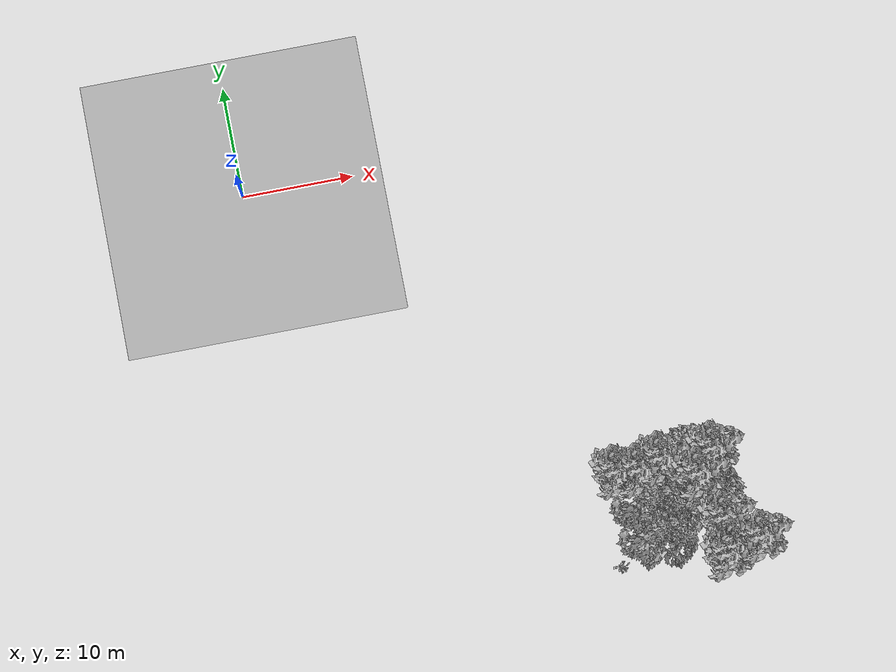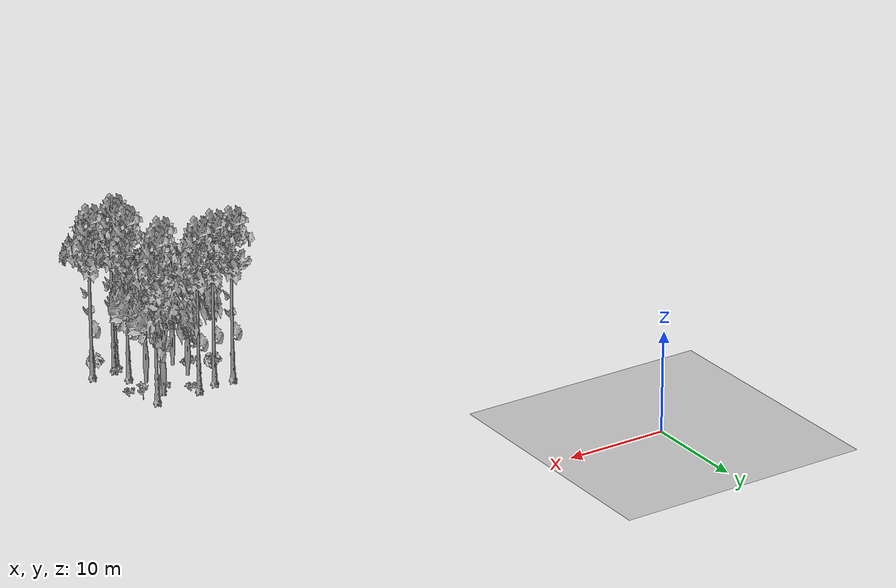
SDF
<sdf version="1.7">
 <world name="default">
  <model name="ground_plane">
   <static>1</static>
   <link name="link">
    <collision name="collision">
     <pose>-50 0 0 0 -0 0</pose>
     <geometry><plane><normal>0 0 1</normal><size>80 80</size></plane></geometry>
     <surface><contact><ode><min_depth>0.01</min_depth><max_vel>0</max_vel></ode></contact></surface>
    </collision>
    <visual name="grass">
     <cast_shadows>0</cast_shadows>
     <geometry>
      <mesh>
       <scale>0.46714285714285714 0.46714285714285714 0.1</scale>
       <uri>file://grass_plane/meshes/grass_plane.dae</uri>
      </mesh>
     </geometry>
    </visual>
   </link>
  </model>
  <model name="Tree 8">
   <static>1</static>
   <pose>35.181705289902354 -30.895556026254162 0 1.57079 -0 0</pose>
   <link name="link">
    <collision name="collision">
     <geometry><mesh><scale>3.5 5 3.5</scale><uri>model://tree_9/meshes/tree_9.obj</uri></mesh></geometry>
    </collision>
    <visual name="visual">
     <geometry><mesh><scale>3.5 5 3.5</scale><uri>model://tree_9/meshes/tree_9.obj</uri></mesh></geometry>
    </visual>
   </link>
  </model>
  <model name="Tree 78">
   <static>1</static>
   <pose>26.834443524269517 -31.31286231257212 0 1.57079 -0 0</pose>
   <link name="link">
    <collision name="collision">
     <geometry><mesh><scale>3.5 5 3.5</scale><uri>model://tree_9/meshes/tree_9.obj</uri></mesh></geometry>
    </collision>
    <visual name="visual">
     <geometry><mesh><scale>3.5 5 3.5</scale><uri>model://tree_9/meshes/tree_9.obj</uri></mesh></geometry>
    </visual>
   </link>
  </model>
  <model name="Tree 81">
   <static>1</static>
   <pose>34.11662355094984 -31.426911372452395 0 1.57079 -0 0</pose>
   <link name="link">
    <collision name="collision">
     <geometry><mesh><scale>3.5 5 3.5</scale><uri>model://tree_2/meshes/tree_2.obj</uri></mesh></geometry>
    </collision>
    <visual name="visual">
     <geometry><mesh><scale>3.5 5 3.5</scale><uri>model://tree_2/meshes/tree_2.obj</uri></mesh></geometry>
    </visual>
   </link>
  </model>
  <model name="Tree 126">
   <static>1</static>
   <pose>28.70498931793435 -31.541054864304687 0 1.57079 -0 0</pose>
   <link name="link">
    <collision name="collision">
     <geometry><mesh><scale>3.5 5 3.5</scale><uri>model://tree_9/meshes/tree_9.obj</uri></mesh></geometry>
    </collision>
    <visual name="visual">
     <geometry><mesh><scale>3.5 5 3.5</scale><uri>model://tree_9/meshes/tree_9.obj</uri></mesh></geometry>
    </visual>
   </link>
  </model>
  <model name="Tree 308">
   <static>1</static>
   <pose>30.152893341631753 -36.79415919085686 0 1.57079 -0 0</pose>
   <link name="link">
    <collision name="collision">
     <geometry><mesh><scale>3.5 5 3.5</scale><uri>model://tree_2/meshes/tree_2.obj</uri></mesh></geometry>
    </collision>
    <visual name="visual">
     <geometry><mesh><scale>3.5 5 3.5</scale><uri>model://tree_2/meshes/tree_2.obj</uri></mesh></geometry>
    </visual>
   </link>
  </model>
  <model name="Tree 310">
   <static>1</static>
   <pose>33.62304597814153 -32.736714445156224 0 1.57079 -0 0</pose>
   <link name="link">
    <collision name="collision">
     <geometry><mesh><scale>3.5 5 3.5</scale><uri>model://tree_9/meshes/tree_9.obj</uri></mesh></geometry>
    </collision>
    <visual name="visual">
     <geometry><mesh><scale>3.5 5 3.5</scale><uri>model://tree_9/meshes/tree_9.obj</uri></mesh></geometry>
    </visual>
   </link>
  </model>
  <model name="Tree 313">
   <static>1</static>
   <pose>30.719743246795602 -30.893213840622185 0 1.57079 -0 0</pose>
   <link name="link">
    <collision name="collision">
     <geometry><mesh><scale>3.5 5 3.5</scale><uri>model://tree_9/meshes/tree_9.obj</uri></mesh></geometry>
    </collision>
    <visual name="visual">
     <geometry><mesh><scale>3.5 5 3.5</scale><uri>model://tree_9/meshes/tree_9.obj</uri></mesh></geometry>
    </visual>
   </link>
  </model>
  <model name="Tree 379">
   <static>1</static>
   <pose>34.99334903942733 -36.73221692671526 0 1.57079 -0 0</pose>
   <link name="link">
    <collision name="collision">
     <geometry><mesh><scale>3.5 5 3.5</scale><uri>model://tree_9/meshes/tree_9.obj</uri></mesh></geometry>
    </collision>
    <visual name="visual">
     <geometry><mesh><scale>3.5 5 3.5</scale><uri>model://tree_9/meshes/tree_9.obj</uri></mesh></geometry>
    </visual>
   </link>
  </model>
  <model name="Tree 381">
   <static>1</static>
   <pose>35.23485439032591 -39.15878344222641 0 1.57079 -0 0</pose>
   <link name="link">
    <collision name="collision">
     <geometry><mesh><scale>3.5 5 3.5</scale><uri>model://tree_9/meshes/tree_9.obj</uri></mesh></geometry>
    </collision>
    <visual name="visual">
     <geometry><mesh><scale>3.5 5 3.5</scale><uri>model://tree_9/meshes/tree_9.obj</uri></mesh></geometry>
    </visual>
   </link>
  </model>
  <model name="Tree 419">
   <static>1</static>
   <pose>30.058684102675613 -34.0594748511868 0 1.57079 -0 0</pose>
   <link name="link">
    <collision name="collision">
     <geometry><mesh><scale>3.5 5 3.5</scale><uri>model://tree_2/meshes/tree_2.obj</uri></mesh></geometry>
    </collision>
    <visual name="visual">
     <geometry><mesh><scale>3.5 5 3.5</scale><uri>model://tree_2/meshes/tree_2.obj</uri></mesh></geometry>
    </visual>
   </link>
  </model>
  <model name="Tree 452">
   <static>1</static>
   <pose>37.67361501792125 -38.90251890423626 0 1.57079 -0 0</pose>
   <link name="link">
    <collision name="collision">
     <geometry><mesh><scale>3.5 5 3.5</scale><uri>model://tree_9/meshes/tree_9.obj</uri></mesh></geometry>
    </collision>
    <visual name="visual">
     <geometry><mesh><scale>3.5 5 3.5</scale><uri>model://tree_9/meshes/tree_9.obj</uri></mesh></geometry>
    </visual>
   </link>
  </model>
  <model name="Tree 470">
   <static>1</static>
   <pose>34.630867442359005 -39.808765105877 0 1.57079 -0 0</pose>
   <link name="link">
    <collision name="collision">
     <geometry><mesh><scale>3.5 5 3.5</scale><uri>model://tree_9/meshes/tree_9.obj</uri></mesh></geometry>
    </collision>
    <visual name="visual">
     <geometry><mesh><scale>3.5 5 3.5</scale><uri>model://tree_9/meshes/tree_9.obj</uri></mesh></geometry>
    </visual>
   </link>
  </model>
  <model name="Tree 565">
   <static>1</static>
   <pose>34.15228543624799 -34.71983571414546 0 1.57079 -0 0</pose>
   <link name="link">
    <collision name="collision">
     <geometry><mesh><scale>3.5 5 3.5</scale><uri>model://tree_2/meshes/tree_2.obj</uri></mesh></geometry>
    </collision>
    <visual name="visual">
     <geometry><mesh><scale>3.5 5 3.5</scale><uri>model://tree_2/meshes/tree_2.obj</uri></mesh></geometry>
    </visual>
   </link>
  </model>
  <model name="Bush 56">
   <static>1</static>
   <pose>26.674619243463866 -38.988272837579274 0 1.57079 -0 0</pose>
   <link name="link">
    <collision name="collision">
     <geometry><mesh><scale>2 2 2</scale><uri>model://bush_4/meshes/bush_4.obj</uri></mesh></geometry>
     <surface><contact><collide_without_contact>false</collide_without_contact></contact></surface>
    </collision>
    <visual name="visual">
     <geometry><mesh><scale>2 2 2</scale><uri>model://bush_4/meshes/bush_4.obj</uri></mesh></geometry>
    </visual>
   </link>
  </model>
  <model name="Bush 66">
   <static>1</static>
   <pose>27.599154844914437 -34.08606707132532 0 1.57079 -0 0</pose>
   <link name="link">
    <collision name="collision">
     <geometry><mesh><scale>2 2 2</scale><uri>model://bush_1/meshes/bush_1.obj</uri></mesh></geometry>
     <surface><contact><collide_without_contact>false</collide_without_contact></contact></surface>
    </collision>
    <visual name="visual">
     <geometry><mesh><scale>2 2 2</scale><uri>model://bush_1/meshes/bush_1.obj</uri></mesh></geometry>
    </visual>
   </link>
  </model>
  <model name="Bush 104">
   <static>1</static>
   <pose>28.926416508878745 -36.57861869946323 0 1.57079 -0 0</pose>
   <link name="link">
    <collision name="collision">
     <geometry><mesh><scale>2 2 2</scale><uri>model://bush_2/meshes/bush_2.obj</uri></mesh></geometry>
     <surface><contact><collide_without_contact>false</collide_without_contact></contact></surface>
    </collision>
    <visual name="visual">
     <geometry><mesh><scale>2 2 2</scale><uri>model://bush_2/meshes/bush_2.obj</uri></mesh></geometry>
    </visual>
   </link>
  </model>
  <model name="Bush 231">
   <static>1</static>
   <pose>37.08780473400978 -39.73579670223957 0 1.57079 -0 0</pose>
   <link name="link">
    <collision name="collision">
     <geometry><mesh><scale>2 2 2</scale><uri>model://bush_1/meshes/bush_1.obj</uri></mesh></geometry>
     <surface><contact><collide_without_contact>false</collide_without_contact></contact></surface>
    </collision>
    <visual name="visual">
     <geometry><mesh><scale>2 2 2</scale><uri>model://bush_1/meshes/bush_1.obj</uri></mesh></geometry>
    </visual>
   </link>
  </model>
  <model name="Bush 250">
   <static>1</static>
   <pose>33.12684930193902 -33.08853017846778 0 1.57079 -0 0</pose>
   <link name="link">
    <collision name="collision">
     <geometry><mesh><scale>2 2 2</scale><uri>model://bush_2/meshes/bush_2.obj</uri></mesh></geometry>
     <surface><contact><collide_without_contact>false</collide_without_contact></contact></surface>
    </collision>
    <visual name="visual">
     <geometry><mesh><scale>2 2 2</scale><uri>model://bush_2/meshes/bush_2.obj</uri></mesh></geometry>
    </visual>
   </link>
  </model>
  <model name="Bush 320">
   <static>1</static>
   <pose>31.140345070362073 -31.741823269949208 0 1.57079 -0 0</pose>
   <link name="link">
    <collision name="collision">
     <geometry><mesh><scale>2 2 2</scale><uri>model://bush_2/meshes/bush_2.obj</uri></mesh></geometry>
     <surface><contact><collide_without_contact>false</collide_without_contact></contact></surface>
    </collision>
    <visual name="visual">
     <geometry><mesh><scale>2 2 2</scale><uri>model://bush_2/meshes/bush_2.obj</uri></mesh></geometry>
    </visual>
   </link>
  </model>
  <model name="Bush 373">
   <static>1</static>
   <pose>36.545455195709124 -33.83493436683079 0 1.57079 -0 0</pose>
   <link name="link">
    <collision name="collision">
     <geometry><mesh><scale>2 2 2</scale><uri>model://bush_2/meshes/bush_2.obj</uri></mesh></geometry>
     <surface><contact><collide_without_contact>false</collide_without_contact></contact></surface>
    </collision>
    <visual name="visual">
     <geometry><mesh><scale>2 2 2</scale><uri>model://bush_2/meshes/bush_2.obj</uri></mesh></geometry>
    </visual>
   </link>
  </model>
  <model name="Bush 483">
   <static>1</static>
   <pose>35.256754960277334 -38.52722901647955 0 1.57079 -0 0</pose>
   <link name="link">
    <collision name="collision">
     <geometry><mesh><scale>2 2 2</scale><uri>model://bush_2/meshes/bush_2.obj</uri></mesh></geometry>
     <surface><contact><collide_without_contact>false</collide_without_contact></contact></surface>
    </collision>
    <visual name="visual">
     <geometry><mesh><scale>2 2 2</scale><uri>model://bush_2/meshes/bush_2.obj</uri></mesh></geometry>
    </visual>
   </link>
  </model>
  <model name="Bush 488">
   <static>1</static>
   <pose>36.278982384422704 -31.603189688552014 0 1.57079 -0 0</pose>
   <link name="link">
    <collision name="collision">
     <geometry><mesh><scale>2 2 2</scale><uri>model://bush_5/meshes/bush_5.obj</uri></mesh></geometry>
     <surface><contact><collide_without_contact>false</collide_without_contact></contact></surface>
    </collision>
    <visual name="visual">
     <geometry><mesh><scale>2 2 2</scale><uri>model://bush_5/meshes/bush_5.obj</uri></mesh></geometry>
    </visual>
   </link>
  </model>
  <model name="Bush 606">
   <static>1</static>
   <pose>28.03489333044152 -36.71338770027185 0 1.57079 -0 0</pose>
   <link name="link">
    <collision name="collision">
     <geometry><mesh><scale>2 2 2</scale><uri>model://bush_2/meshes/bush_2.obj</uri></mesh></geometry>
     <surface><contact><collide_without_contact>false</collide_without_contact></contact></surface>
    </collision>
    <visual name="visual">
     <geometry><mesh><scale>2 2 2</scale><uri>model://bush_2/meshes/bush_2.obj</uri></mesh></geometry>
    </visual>
   </link>
  </model>
 </world>
</sdf>
